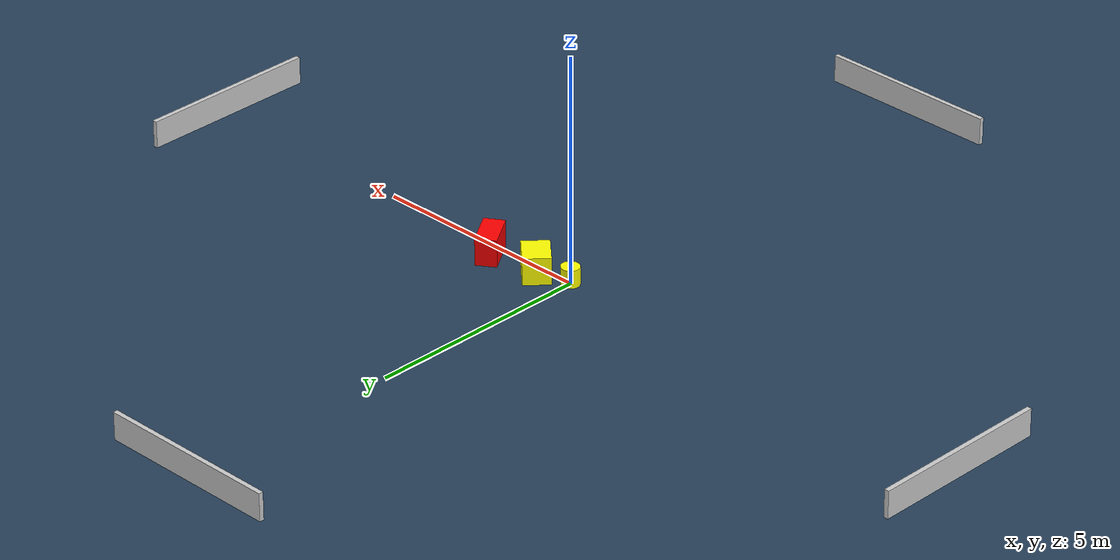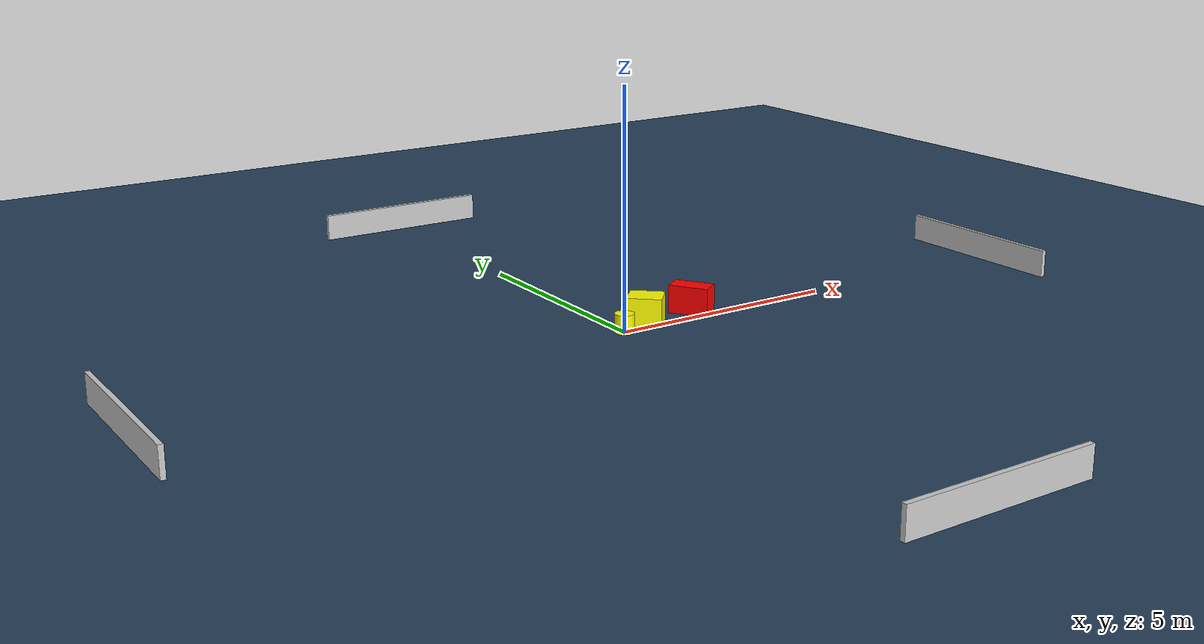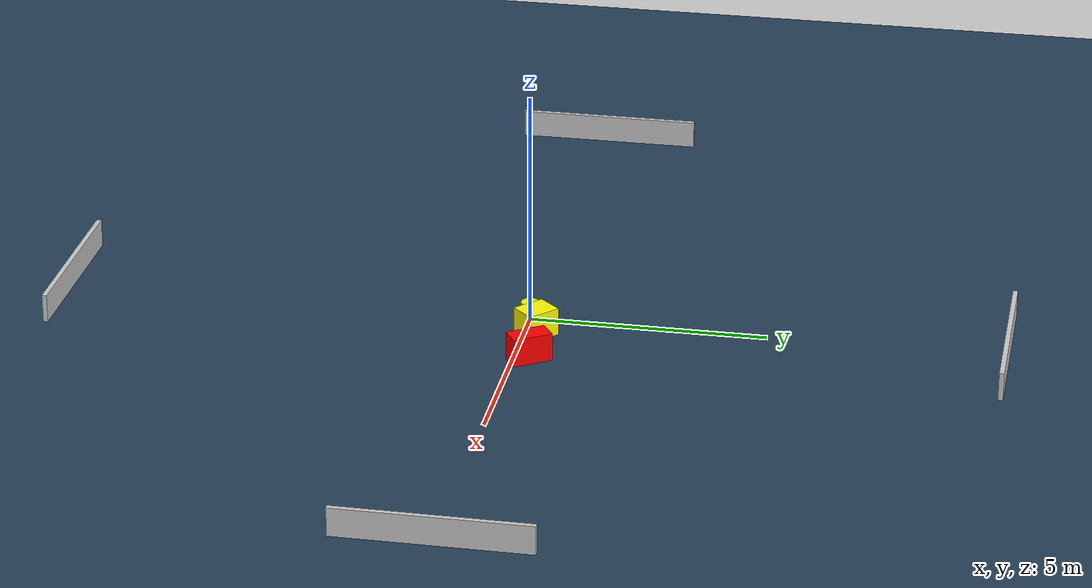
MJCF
<?xml version="1.0" ?>
<mujoco model="generated_environment">
  <option timestep="0.01" integrator="RK4" cone="elliptic"/>
  <default>
    <geom density="1"/>
  </default>
  <asset>
    <texture builtin="gradient" height="3072" name="skybox" rgb1="0.3 0.5 0.7" rgb2="0 0 0" type="skybox" width="512"/>
    <texture builtin="checker" height="300" name="groundplane" rgb1="0.2 0.3 0.4" rgb2="0.1 0.2 0.3" type="2d" width="300"/>
    <material name="groundplane" reflectance="0.2" texrepeat="5 5" texture="groundplane"/>
  </asset>
  <worldbody>
    <light dir="0 0 -1" directional="true" pos="0 0 1.5"/>
    <geom condim="3" friction="0.5 0.005 0.001" material="groundplane" name="floor" pos="0 0 0" size="0 0 0.05" type="plane"/>
    <body name="walls">
      <geom name="wall_1" condim="4" pos="-10.0 0.0 0.3" rgba="0.800000011920929 0.800000011920929 0.800000011920929 1.0" size="0.05 2.0 0.3" type="box"/>
      <geom name="wall_2" condim="4" pos="10.0 0.0 0.3" rgba="0.800000011920929 0.800000011920929 0.800000011920929 1.0" size="0.05 2.0 0.3" type="box"/>
      <geom name="wall_3" condim="4" pos="0.0 -10.0 0.3" rgba="0.800000011920929 0.800000011920929 0.800000011920929 1.0" size="2.0 0.05 0.3" type="box"/>
      <geom name="wall_4" condim="4" pos="0.0 10.0 0.3" rgba="0.800000011920929 0.800000011920929 0.800000011920929 1.0" size="2.0 0.05 0.3" type="box"/>
    </body>
    <body name="robot">
      <joint name="joint_x" type="slide" pos="0 0 0" axis="1 0 0"/>
      <joint name="joint_y" type="slide" pos="0 0 0" axis="0 1 0"/>
      <geom name="robot" type="cylinder" pos="0.0 0.0 0.2" size="0.2 0.2 0.0" mass="5.0" friction="1.0 0.005 0.0001" condim="4" rgba="1.0 1.0 0.0 1.0"/>
    </body>
    <body name="obstacle_1_movable">
      <geom name="obstacle_1_movable" condim="4" pos="0.6985885866478901 0.2511927357343411 0.3" euler="0 0 47.265573524179" friction="0.0 0.005 0.001" rgba="1.0 1.0 0.0 1.0" size="0.29214601269508433 0.3613952782570438 0.3" type="box" mass="0.1"/>
      <joint type="free"/>
    </body>
    <body name="obstacle_2_static">
      <geom name="obstacle_2_static" condim="4" pos="1.9045864381051019 0.32644323498479466 0.3" euler="0 0 303.3300009532782" friction="0.0 0.005 0.001" rgba="1.0 0.0 0.0 1.0" size="0.4256012419213071 0.22591178096697426 0.3" type="box"/>
    </body>
  </worldbody>
  <actuator>
    <motor name="actuator_x" joint="joint_x" gear="1" ctrlrange="-1 1"/>
    <motor name="actuator_y" joint="joint_y" gear="1" ctrlrange="-1 1"/>
  </actuator>
</mujoco>
